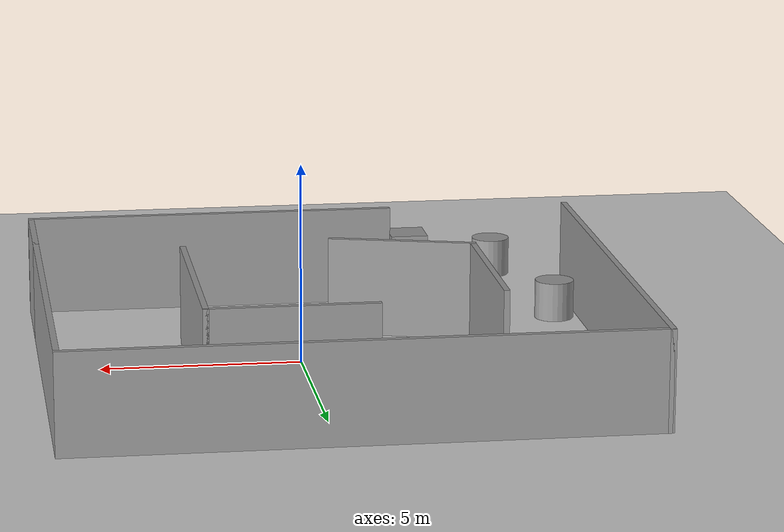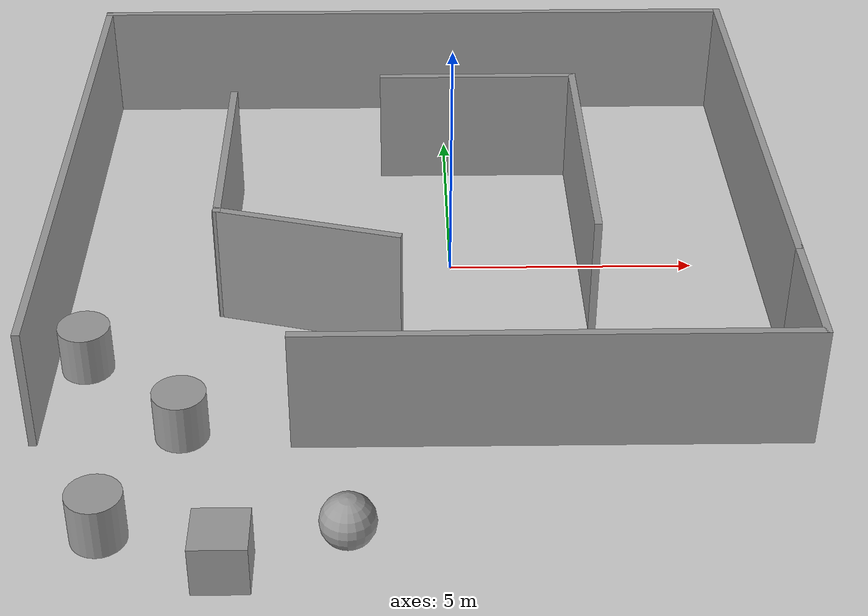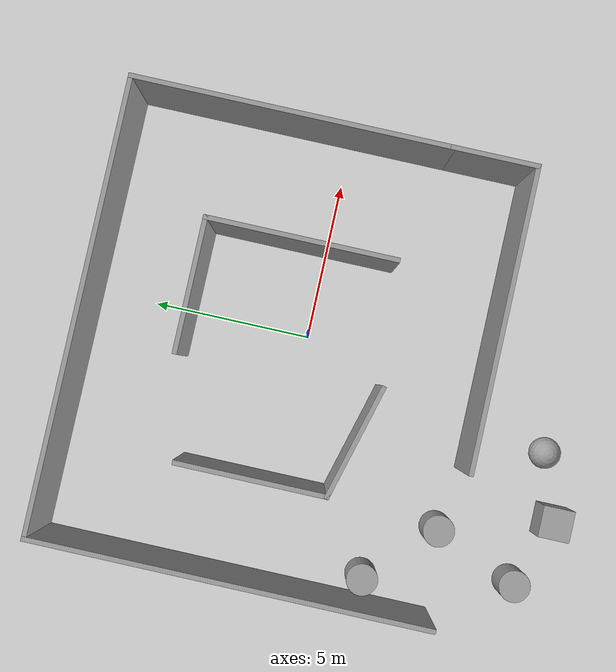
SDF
<sdf version="1.7">
 <world name="default">
  <light name="sun" type="directional">
   <pose>0 0 10 0 -0 0</pose>
   <diffuse>0.8 0.8 0.8 1</diffuse>
   <specular>0.2 0.2 0.2 1</specular>
   <attenuation>
    <range>1000</range>
    <constant>0.9</constant>
    <linear>0.01</linear>
    <quadratic>0.001</quadratic>
   </attenuation>
   <direction>-0.5 0.1 -0.9</direction>
   <spot><inner_angle>0</inner_angle><outer_angle>0</outer_angle><falloff>0</falloff></spot>
  </light>
  <model name="ground_plane">
   <static>1</static>
   <link name="link">
    <collision name="collision">
     <geometry><plane><normal>0 0 1</normal><size>100 100</size></plane></geometry>
     <surface>
      <contact><collide_bitmask>65535</collide_bitmask></contact>
      <friction><ode><mu>100</mu><mu2>50</mu2></ode></friction>
     </surface>
    </collision>
    <visual name="visual">
     <cast_shadows>0</cast_shadows>
     <geometry><plane><normal>0 0 1</normal><size>100 100</size></plane></geometry>
     <material>
      <script><uri>file://media/materials/scripts/gazebo.material</uri><name>Gazebo/Grey</name></script>
     </material>
    </visual>
   </link>
  </model>
  <gravity>0 0 -9.8</gravity>
  <magnetic_field>6e-06 2.3e-05 -4.2e-05</magnetic_field>
  <atmosphere type="adiabatic"/>
  <physics type="ode">
   <max_step_size>0.001</max_step_size>
   <real_time_factor>1</real_time_factor>
   <real_time_update_rate>1000</real_time_update_rate>
  </physics>
  <scene><ambient>0.4 0.4 0.4 1</ambient><background>0.7 0.7 0.7 1</background><shadows>1</shadows></scene>
  <spherical_coordinates>
   <surface_model>EARTH_WGS84</surface_model>
   <latitude_deg>0</latitude_deg>
   <longitude_deg>0</longitude_deg>
   <elevation>0</elevation>
   <heading_deg>0</heading_deg>
  </spherical_coordinates>
  <model name="wall">
   <pose>-0.670302 0.616814 0 0 -0 0</pose>
   <link name="Wall_11">
    <collision name="Wall_11_Collision">
     <geometry><box><size>12.5 0.15 2.5</size></box></geometry>
     <pose>0 0 1.25 0 -0 0</pose>
    </collision>
    <visual name="Wall_11_Visual">
     <pose>0 0 1.25 0 -0 0</pose>
     <geometry><box><size>12.5 0.15 2.5</size></box></geometry>
     <material>
      <script><uri>file://media/materials/scripts/gazebo.material</uri><name>Gazebo/Grey</name></script>
      <ambient>1 1 1 1</ambient>
     </material>
     <meta><layer>0</layer></meta>
    </visual>
    <pose>-7.05 0.05 0 0 -0 -1.5708</pose>
   </link>
   <link name="Wall_13">
    <collision name="Wall_13_Collision">
     <geometry><box><size>4.75 0.15 2.5</size></box></geometry>
     <pose>0 0 1.25 0 -0 0</pose>
    </collision>
    <visual name="Wall_13_Visual">
     <pose>0 0 1.25 0 -0 0</pose>
     <geometry><box><size>4.75 0.15 2.5</size></box></geometry>
     <material>
      <script><uri>file://media/materials/scripts/gazebo.material</uri><name>Gazebo/Grey</name></script>
      <ambient>1 1 1 1</ambient>
     </material>
     <meta><layer>0</layer></meta>
    </visual>
    <pose>-3.89446 0.08172 0 0 -0 -1.5708</pose>
   </link>
   <link name="Wall_14">
    <collision name="Wall_14_Collision">
     <geometry><box><size>3.75 0.15 2.5</size></box></geometry>
     <pose>0 0 1.25 0 -0 0</pose>
    </collision>
    <visual name="Wall_14_Visual">
     <pose>0 0 1.25 0 -0 0</pose>
     <geometry><box><size>3.75 0.15 2.5</size></box></geometry>
     <material>
      <script><uri>file://media/materials/scripts/gazebo.material</uri><name>Gazebo/Grey</name></script>
      <ambient>1 1 1 1</ambient>
     </material>
     <meta><layer>0</layer></meta>
    </visual>
    <pose>-2.1558 -2.68416 0 0 -0 -0.261799</pose>
   </link>
   <link name="Wall_16">
    <collision name="Wall_16_Collision">
     <geometry><box><size>4.25 0.15 2.5</size></box></geometry>
     <pose>0 0 1.25 0 -0 0</pose>
    </collision>
    <visual name="Wall_16_Visual">
     <pose>0 0 1.25 0 -0 0</pose>
     <geometry><box><size>4.25 0.15 2.5</size></box></geometry>
     <material>
      <script><uri>file://media/materials/scripts/gazebo.material</uri><name>Gazebo/Grey</name></script>
      <ambient>1 1 1 1</ambient>
     </material>
     <meta><layer>0</layer></meta>
    </visual>
    <pose>1.35153 3.10992 0 0 -0 0</pose>
   </link>
   <link name="Wall_17">
    <collision name="Wall_17_Collision">
     <geometry><box><size>6 0.15 2.5</size></box></geometry>
     <pose>0 0 1.25 0 -0 0</pose>
    </collision>
    <visual name="Wall_17_Visual">
     <pose>0 0 1.25 0 -0 0</pose>
     <geometry><box><size>6 0.15 2.5</size></box></geometry>
     <material>
      <script><uri>file://media/materials/scripts/gazebo.material</uri><name>Gazebo/Grey</name></script>
      <ambient>1 1 1 1</ambient>
     </material>
     <meta><layer>0</layer></meta>
    </visual>
    <pose>3.40153 0.18492 0 0 -0 -1.5708</pose>
   </link>
   <link name="Wall_6">
    <collision name="Wall_6_Collision">
     <geometry><box><size>14.25 0.15 2.5</size></box></geometry>
     <pose>0 0 1.25 0 -0 0</pose>
    </collision>
    <visual name="Wall_6_Visual">
     <pose>0 0 1.25 0 -0 0</pose>
     <geometry><box><size>14.25 0.15 2.5</size></box></geometry>
     <material>
      <script><uri>file://media/materials/scripts/gazebo.material</uri><name>Gazebo/Grey</name></script>
      <ambient>1 1 1 1</ambient>
     </material>
     <meta><layer>0</layer></meta>
    </visual>
    <pose>0 6.225 0 0 -0 0</pose>
   </link>
   <link name="Wall_7">
    <collision name="Wall_7_Collision">
     <geometry><box><size>10 0.15 2.5</size></box></geometry>
     <pose>0 0 1.25 0 -0 0</pose>
    </collision>
    <visual name="Wall_7_Visual">
     <pose>0 0 1.25 0 -0 0</pose>
     <geometry><box><size>10 0.15 2.5</size></box></geometry>
     <material>
      <script><uri>file://media/materials/scripts/gazebo.material</uri><name>Gazebo/Grey</name></script>
      <ambient>1 1 1 1</ambient>
     </material>
     <meta><layer>0</layer></meta>
    </visual>
    <pose>7.05 1.3 0 0 -0 -1.5708</pose>
   </link>
   <link name="Wall_8">
    <collision name="Wall_8_Collision">
     <geometry><box><size>2.75 0.15 2.5</size></box></geometry>
     <pose>0 0 1.25 0 -0 0</pose>
    </collision>
    <visual name="Wall_8_Visual">
     <pose>0 0 1.25 0 -0 0</pose>
     <geometry><box><size>2.75 0.15 2.5</size></box></geometry>
     <material>
      <script><uri>file://media/materials/scripts/gazebo.material</uri><name>Gazebo/Grey</name></script>
      <ambient>1 1 1 1</ambient>
     </material>
     <meta><layer>0</layer></meta>
    </visual>
    <pose>7.05 -4.925 0 0 -0 -1.5708</pose>
   </link>
   <link name="Wall_9">
    <collision name="Wall_9_Collision">
     <geometry><box><size>9.5 0.15 2.5</size></box></geometry>
     <pose>0 0 1.25 0 -0 0</pose>
    </collision>
    <visual name="Wall_9_Visual">
     <pose>0 0 1.25 0 -0 0</pose>
     <geometry><box><size>9.5 0.15 2.5</size></box></geometry>
     <material>
      <script><uri>file://media/materials/scripts/gazebo.material</uri><name>Gazebo/Grey</name></script>
      <ambient>1 1 1 1</ambient>
     </material>
     <meta><layer>0</layer></meta>
    </visual>
    <pose>2.375 -6.225 0 0 -0 3.14159</pose>
   </link>
   <static>1</static>
  </model>
  <model name="unit_cylinder">
   <pose>-7.0323 -3.30649 0.499992 -3e-06 -4e-06 -0</pose>
   <link name="link">
    <inertial>
     <mass>1</mass>
     <inertia><ixx>0.145833</ixx><ixy>0</ixy><ixz>0</ixz><iyy>0.145833</iyy><iyz>0</iyz><izz>0.125</izz></inertia>
    </inertial>
    <collision name="collision">
     <geometry><cylinder><radius>0.5</radius><length>1</length></cylinder></geometry>
    </collision>
    <visual name="visual">
     <geometry><cylinder><radius>0.5</radius><length>1</length></cylinder></geometry>
     <material>
      <script><name>Gazebo/Grey</name><uri>file://media/materials/scripts/gazebo.material</uri></script>
     </material>
    </visual>
   </link>
  </model>
  <model name="unit_cylinder_0">
   <pose>-5.03873 -5.31434 0.499993 -3e-06 -3e-06 -0</pose>
   <link name="link">
    <inertial>
     <mass>1</mass>
     <inertia><ixx>0.145833</ixx><ixy>0</ixy><ixz>0</ixz><iyy>0.145833</iyy><iyz>0</iyz><izz>0.125</izz></inertia>
    </inertial>
    <collision name="collision">
     <geometry><cylinder><radius>0.5</radius><length>1</length></cylinder></geometry>
    </collision>
    <visual name="visual">
     <geometry><cylinder><radius>0.5</radius><length>1</length></cylinder></geometry>
     <material>
      <script><name>Gazebo/Grey</name><uri>file://media/materials/scripts/gazebo.material</uri></script>
     </material>
    </visual>
   </link>
  </model>
  <model name="unit_cylinder_1">
   <pose>-6.1965 -7.98094 0.499997 3e-06 4e-06 -0</pose>
   <link name="link">
    <inertial>
     <mass>1</mass>
     <inertia><ixx>0.145833</ixx><ixy>0</ixy><ixz>0</ixz><iyy>0.145833</iyy><iyz>0</iyz><izz>0.125</izz></inertia>
    </inertial>
    <collision name="collision">
     <geometry><cylinder><radius>0.5</radius><length>1</length></cylinder></geometry>
    </collision>
    <visual name="visual">
     <geometry><cylinder><radius>0.5</radius><length>1</length></cylinder></geometry>
     <material>
      <script><name>Gazebo/Grey</name><uri>file://media/materials/scripts/gazebo.material</uri></script>
     </material>
    </visual>
   </link>
  </model>
  <model name="unit_sphere">
   <pose>-1.95078 -8.15257 0.5 0 -0 0</pose>
   <link name="link">
    <inertial>
     <mass>1</mass>
     <inertia><ixx>0.1</ixx><ixy>0</ixy><ixz>0</ixz><iyy>0.1</iyy><iyz>0</iyz><izz>0.1</izz></inertia>
    </inertial>
    <collision name="collision"><geometry><sphere><radius>0.5</radius></sphere></geometry></collision>
    <visual name="visual">
     <geometry><sphere><radius>0.5</radius></sphere></geometry>
     <material>
      <script><name>Gazebo/Grey</name><uri>file://media/materials/scripts/gazebo.material</uri></script>
     </material>
    </visual>
   </link>
  </model>
  <model name="unit_box">
   <pose>-4.02766 -8.85221 0.5 0 -0 0</pose>
   <link name="link">
    <inertial>
     <mass>1</mass>
     <inertia>
      <ixx>0.166667</ixx>
      <ixy>0</ixy>
      <ixz>0</ixz>
      <iyy>0.166667</iyy>
      <iyz>0</iyz>
      <izz>0.166667</izz>
     </inertia>
    </inertial>
    <collision name="collision"><geometry><box><size>1 1 1</size></box></geometry></collision>
    <visual name="visual">
     <geometry><box><size>1 1 1</size></box></geometry>
     <material>
      <script><name>Gazebo/Grey</name><uri>file://media/materials/scripts/gazebo.material</uri></script>
     </material>
    </visual>
   </link>
  </model>
 </world>
</sdf>
